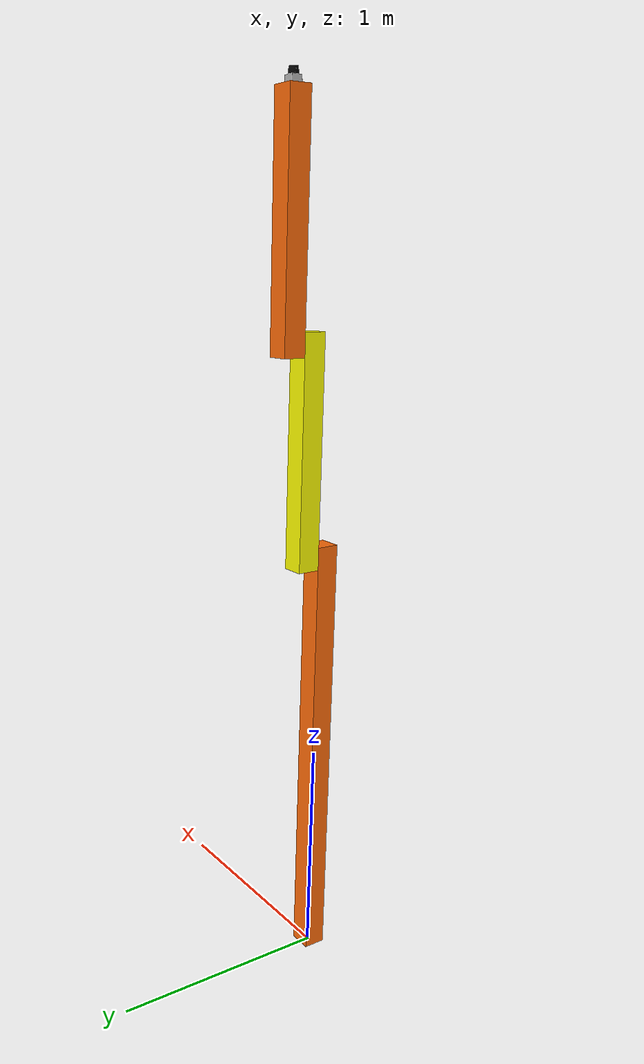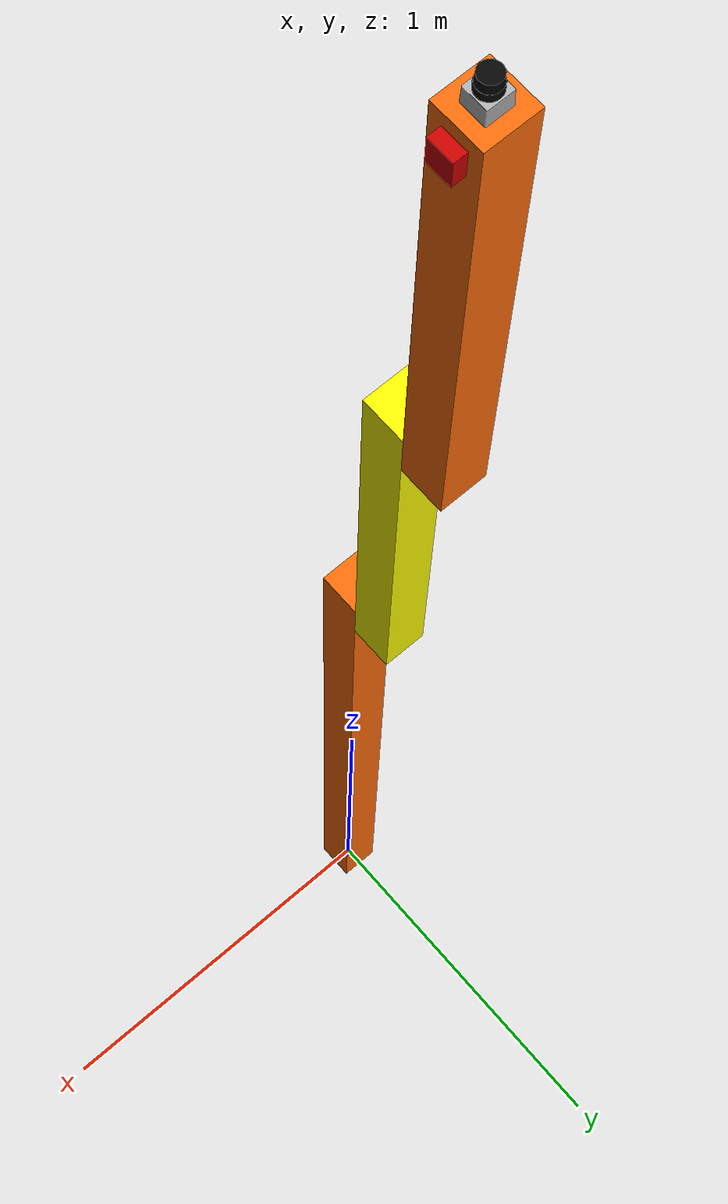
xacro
<?xml version="1.0"?>
<!-- Revolute-Revolute Manipulator -->
<!--
Copied and modified from ROS1 example -
https://github.com/ros-simulation/gazebo_ros_demos/blob/kinetic-devel/rrbot_description/urdf/rrbot.xacro
-->
<robot xmlns:xacro="http://www.ros.org/wiki/xacro" name="2dof_robot">
  <xacro:arg name="prefix" default="" />
  <xacro:arg name="use_gazebo" default="false" />

  <!-- Import RRBot macro -->
  <xacro:include filename="$(find ros2_control_demo_description)/rrbot/urdf/rrbot_description.urdf.xacro" />

  <!-- Import Rviz colors -->
  <xacro:include filename="$(find ros2_control_demo_description)/rrbot/urdf/rrbot.materials.xacro" />

  <!-- Import RRBot ros2_control description -->
  <xacro:include filename="$(find ros2_control_demo_example_9)/ros2_control/rrbot.ros2_control.xacro" />

  <!-- Used for fixing robot -->
  <link name="world"/>

  <xacro:rrbot parent="world" prefix="$(arg prefix)">
    <origin xyz="0 0 0" rpy="0 0 0" />
  </xacro:rrbot>

  <xacro:rrbot_ros2_control
    name="RRBot" prefix="$(arg prefix)" use_gazebo="$(arg use_gazebo)"/>

  <xacro:if value="$(arg use_gazebo)">
    <!-- Import Gazebo Classic definitions + plugin -->
    <xacro:include filename="$(find ros2_control_demo_example_9)/gazebo/rrbot.gazebo.xacro" />
    <xacro:rrbot_gazebo prefix="$(arg prefix)"/>
  </xacro:if>
</robot>

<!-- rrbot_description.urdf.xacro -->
<robot xmlns:xacro="http://www.ros.org/wiki/xacro">

  <xacro:macro name="rrbot" params="parent prefix *origin">

  <!-- Constants for robot dimensions -->
  <xacro:property name="mass" value="1" /> <!-- arbitrary value for mass -->
  <xacro:property name="width" value="0.1" /> <!-- Square dimensions (widthxwidth) of beams -->
  <xacro:property name="height1" value="2" /> <!-- Link 1 -->
  <xacro:property name="height2" value="1" /> <!-- Link 2 -->
  <xacro:property name="height3" value="1" /> <!-- Link 3 -->
  <xacro:property name="camera_link" value="0.05" /> <!-- Size of square 'camera' box -->
  <xacro:property name="axel_offset" value="0.05" /> <!-- Space btw top of beam and the each joint -->

  <joint name="${prefix}base_joint" type="fixed">
    <xacro:insert_block name="origin" />
    <parent link="${parent}"/>
    <child link="${prefix}base_link" />
  </joint>

  <!-- Base Link -->
  <link name="${prefix}base_link">
    <collision>
      <origin xyz="0 0 ${height1/2}" rpy="0 0 0"/>
      <geometry>
        <box size="${width} ${width} ${height1}"/>
      </geometry>
    </collision>

    <visual>
      <origin xyz="0 0 ${height1/2}" rpy="0 0 0"/>
      <geometry>
        <box size="${width} ${width} ${height1}"/>
      </geometry>
      <material name="orange"/>
    </visual>

    <inertial>
      <origin xyz="0 0 ${height1/2}" rpy="0 0 0"/>
      <mass value="${mass}"/>
      <inertia
        ixx="${mass / 12.0 * (width*width + height1*height1)}" ixy="0.0" ixz="0.0"
        iyy="${mass / 12.0 * (height1*height1 + width*width)}" iyz="0.0"
        izz="${mass / 12.0 * (width*width + width*width)}"/>
      </inertial>
    </link>

    <joint name="${prefix}joint1" type="continuous">
      <parent link="${prefix}base_link"/>
      <child link="${prefix}link1"/>
      <origin xyz="0 ${width} ${height1 - axel_offset}" rpy="0 0 0"/>
      <axis xyz="0 1 0"/>
      <dynamics damping="0.7"/>
    </joint>

    <!-- Middle Link -->
    <link name="${prefix}link1">
      <collision>
        <origin xyz="0 0 ${height2/2 - axel_offset}" rpy="0 0 0"/>
        <geometry>
          <box size="${width} ${width} ${height2}"/>
        </geometry>
      </collision>

      <visual>
        <origin xyz="0 0 ${height2/2 - axel_offset}" rpy="0 0 0"/>
        <geometry>
          <box size="${width} ${width} ${height2}"/>
        </geometry>
        <material name="yellow"/>
      </visual>

      <inertial>
        <origin xyz="0 0 ${height2/2 - axel_offset}" rpy="0 0 0"/>
        <mass value="${mass}"/>
        <inertia
          ixx="${mass / 12.0 * (width*width + height2*height2)}" ixy="0.0" ixz="0.0"
          iyy="${mass / 12.0 * (height2*height2 + width*width)}" iyz="0.0"
          izz="${mass / 12.0 * (width*width + width*width)}"/>
        </inertial>
      </link>

      <joint name="${prefix}joint2" type="continuous">
        <parent link="${prefix}link1"/>
        <child link="${prefix}link2"/>
        <origin xyz="0 ${width} ${height2 - axel_offset*2}" rpy="0 0 0"/>
        <axis xyz="0 1 0"/>
        <dynamics damping="0.7"/>
      </joint>

      <!-- Top Link -->
      <link name="${prefix}link2">
        <collision>
          <origin xyz="0 0 ${height3/2 - axel_offset}" rpy="0 0 0"/>
          <geometry>
            <box size="${width} ${width} ${height3}"/>
          </geometry>
        </collision>

        <visual>
          <origin xyz="0 0 ${height3/2 - axel_offset}" rpy="0 0 0"/>
          <geometry>
            <box size="${width} ${width} ${height3}"/>
          </geometry>
          <material name="orange"/>
        </visual>

        <inertial>
          <origin xyz="0 0 ${height3/2 - axel_offset}" rpy="0 0 0"/>
          <mass value="${mass}"/>
          <inertia
            ixx="${mass / 12.0 * (width*width + height3*height3)}" ixy="0.0" ixz="0.0"
            iyy="${mass / 12.0 * (height3*height3 + width*width)}" iyz="0.0"
            izz="${mass / 12.0 * (width*width + width*width)}"/>
          </inertial>
        </link>

        <joint name="${prefix}tool_joint" type="fixed">
          <origin xyz="0 0 1" rpy="0 0 0" />
          <parent link="${prefix}link2"/>
          <child link="${prefix}tool_link" />
        </joint>

        <!-- Tool Link -->
        <link name="${prefix}tool_link">
        </link>

        <joint name="${prefix}hokuyo_joint" type="fixed">
          <axis xyz="0 1 0" />
          <origin xyz="0 0 ${height3 - axel_offset/2}" rpy="0 0 0"/>
          <parent link="${prefix}link2"/>
          <child link="${prefix}hokuyo_link"/>
        </joint>

        <!-- Hokuyo Laser -->
        <link name="${prefix}hokuyo_link">
          <collision>
            <origin xyz="0 0 0" rpy="0 0 0"/>
            <geometry>
              <box size="0.1 0.1 0.1"/>
            </geometry>
          </collision>

          <visual>
            <origin xyz="0 0 0" rpy="0 0 0"/>
            <geometry>
              <mesh filename="package://rrbot_description/meshes/hokuyo.dae"/>
            </geometry>
          </visual>

          <inertial>
            <mass value="1e-5" />
            <origin xyz="0 0 0" rpy="0 0 0"/>
            <inertia ixx="1e-6" ixy="0" ixz="0" iyy="1e-6" iyz="0" izz="1e-6" />
          </inertial>
        </link>

        <joint name="${prefix}camera_joint" type="fixed">
          <axis xyz="0 1 0" />
          <origin xyz="${camera_link} 0 ${height3 - axel_offset*2}" rpy="0 0 0"/>
          <parent link="${prefix}link2"/>
          <child link="${prefix}camera_link"/>
        </joint>

        <!-- Camera -->
        <link name="${prefix}camera_link">
          <collision>
            <origin xyz="0 0 0" rpy="0 0 0"/>
            <geometry>
              <box size="${camera_link} ${camera_link} ${camera_link}"/>
            </geometry>
          </collision>

          <visual>
            <origin xyz="0 0 0" rpy="0 0 0"/>
            <geometry>
              <box size="${camera_link} ${camera_link} ${camera_link}"/>
            </geometry>
            <material name="red"/>
          </visual>

          <inertial>
            <mass value="1e-5" />
            <origin xyz="0 0 0" rpy="0 0 0"/>
            <inertia ixx="1e-6" ixy="0" ixz="0" iyy="1e-6" iyz="0" izz="1e-6" />
          </inertial>
        </link>

        <!-- generate an optical frame http://www.ros.org/reps/rep-0103.html#suffix-frames
        so that ros and opencv can operate on the camera frame correctly -->
        <joint name="${prefix}camera_optical_joint" type="fixed">
          <!-- these values have to be these values otherwise the gazebo camera image
          won't be aligned properly with the frame it is supposedly originating from -->
          <origin xyz="0 0 0" rpy="${-pi/2} 0 ${-pi/2}"/>
          <parent link="${prefix}camera_link"/>
          <child link="${prefix}camera_link_optical"/>
        </joint>

        <link name="${prefix}camera_link_optical">
        </link>

  </xacro:macro>

</robot>

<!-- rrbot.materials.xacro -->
<!--
Copied from ROS1 example -
https://github.com/ros-simulation/gazebo_ros_demos/blob/kinetic-devel/rrbot_description/urdf/materials.xacro
-->
<robot>

  <material name="black">
    <color rgba="0.0 0.0 0.0 1.0"/>
  </material>

  <material name="blue">
    <color rgba="0.0 0.0 0.8 1.0"/>
  </material>

  <material name="green">
    <color rgba="0.0 0.8 0.0 1.0"/>
  </material>

  <material name="grey">
    <color rgba="0.2 0.2 0.2 1.0"/>
  </material>

  <material name="orange">
    <color rgba="${255/255} ${108/255} ${10/255} 1.0"/>
  </material>

  <material name="brown">
    <color rgba="${222/255} ${207/255} ${195/255} 1.0"/>
  </material>

  <material name="red">
    <color rgba="0.8 0.0 0.0 1.0"/>
  </material>

  <material name="yellow">
    <color rgba="1.0 1.0 0.0 1.0"/>
  </material>

  <material name="white">
    <color rgba="1.0 1.0 1.0 1.0"/>
  </material>

</robot>
